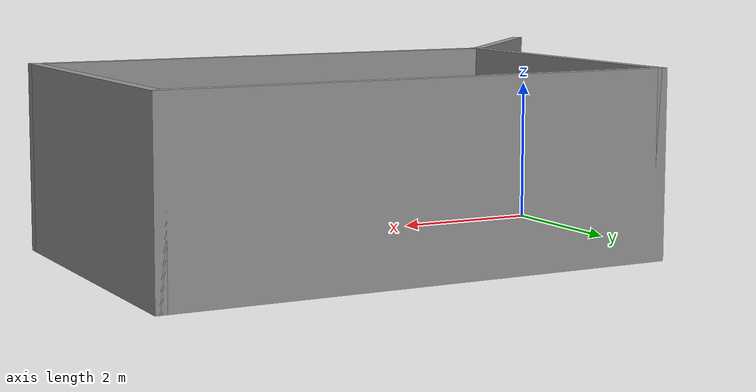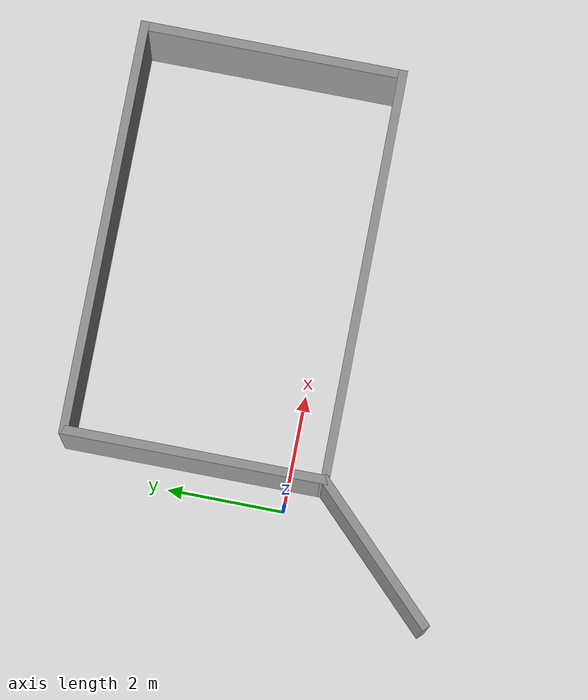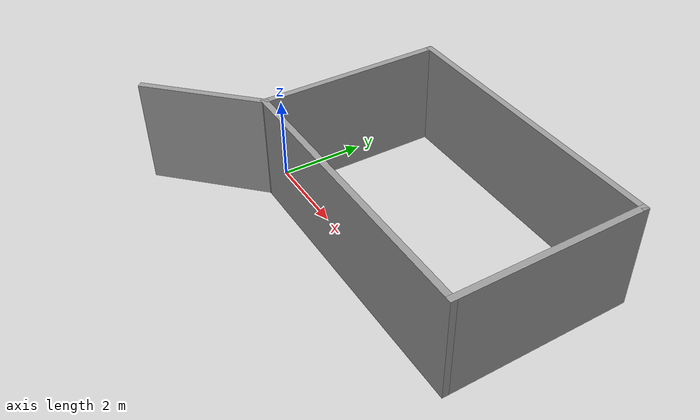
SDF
<?xml version='1.0'?>
<sdf version='1.7'>
  <model name='trial_2'>
    <pose>2.84709 0.567094 0 0 -0 0</pose>
    <link name='Wall_0'>
      <collision name='Wall_0_Collision'>
        <geometry>
          <box>
            <size>3 0.15 2.5</size>
          </box>
        </geometry>
        <pose>0 0 1.25 0 -0 0</pose>
      </collision>
      <visual name='Wall_0_Visual'>
        <pose>0 0 1.25 0 -0 0</pose>
        <geometry>
          <box>
            <size>3 0.15 2.5</size>
          </box>
        </geometry>
        <material>
          <script>
            <uri>file://media/materials/scripts/gazebo.material</uri>
            <name>Gazebo/Grey</name>
          </script>
          <ambient>1 1 1 1</ambient>
        </material>
        <meta>
          <layer>0</layer>
        </meta>
      </visual>
      <pose>-3.40947 -2.15947 0 0 -0 0.785398</pose>
    </link>
    <link name='Wall_3'>
      <collision name='Wall_3_Collision'>
        <geometry>
          <box>
            <size>4.5 0.15 2.5</size>
          </box>
        </geometry>
        <pose>0 0 1.25 0 -0 0</pose>
      </collision>
      <visual name='Wall_3_Visual'>
        <pose>0 0 1.25 0 -0 0</pose>
        <geometry>
          <box>
            <size>4.5 0.15 2.5</size>
          </box>
        </geometry>
        <material>
          <script>
            <uri>file://media/materials/scripts/gazebo.material</uri>
            <name>Gazebo/Grey</name>
          </script>
          <ambient>1 1 1 1</ambient>
        </material>
        <meta>
          <layer>0</layer>
        </meta>
      </visual>
      <pose>-2.40184 1.02316 0 0 -0 1.5708</pose>
    </link>
    <link name='Wall_4'>
      <collision name='Wall_4_Collision'>
        <geometry>
          <box>
            <size>7 0.15 2.5</size>
          </box>
        </geometry>
        <pose>0 0 1.25 0 -0 0</pose>
      </collision>
      <visual name='Wall_4_Visual'>
        <pose>0 0 1.25 0 -0 0</pose>
        <geometry>
          <box>
            <size>7 0.15 2.5</size>
          </box>
        </geometry>
        <material>
          <script>
            <uri>file://media/materials/scripts/gazebo.material</uri>
            <name>Gazebo/Grey</name>
          </script>
          <ambient>1 1 1 1</ambient>
        </material>
        <meta>
          <layer>0</layer>
        </meta>
      </visual>
      <pose>1.02316 3.19816 0 0 -0 0</pose>
    </link>
    <link name='Wall_5'>
      <collision name='Wall_5_Collision'>
        <geometry>
          <box>
            <size>4.5 0.15 2.5</size>
          </box>
        </geometry>
        <pose>0 0 1.25 0 -0 0</pose>
      </collision>
      <visual name='Wall_5_Visual'>
        <pose>0 0 1.25 0 -0 0</pose>
        <geometry>
          <box>
            <size>4.5 0.15 2.5</size>
          </box>
        </geometry>
        <material>
          <script>
            <uri>file://media/materials/scripts/gazebo.material</uri>
            <name>Gazebo/Grey</name>
          </script>
          <ambient>1 1 1 1</ambient>
        </material>
        <meta>
          <layer>0</layer>
        </meta>
      </visual>
      <pose>4.44816 1.02316 0 0 -0 -1.5708</pose>
    </link>
    <link name='Wall_6'>
      <collision name='Wall_6_Collision'>
        <geometry>
          <box>
            <size>7 0.15 2.5</size>
          </box>
        </geometry>
        <pose>0 0 1.25 0 -0 0</pose>
      </collision>
      <visual name='Wall_6_Visual'>
        <pose>0 0 1.25 0 -0 0</pose>
        <geometry>
          <box>
            <size>7 0.15 2.5</size>
          </box>
        </geometry>
        <material>
          <script>
            <uri>file://media/materials/scripts/gazebo.material</uri>
            <name>Gazebo/Grey</name>
          </script>
          <ambient>1 1 1 1</ambient>
        </material>
        <meta>
          <layer>0</layer>
        </meta>
      </visual>
      <pose>1.02316 -1.15184 0 0 -0 3.14159</pose>
    </link>
    <static>1</static>
  </model>
</sdf>
